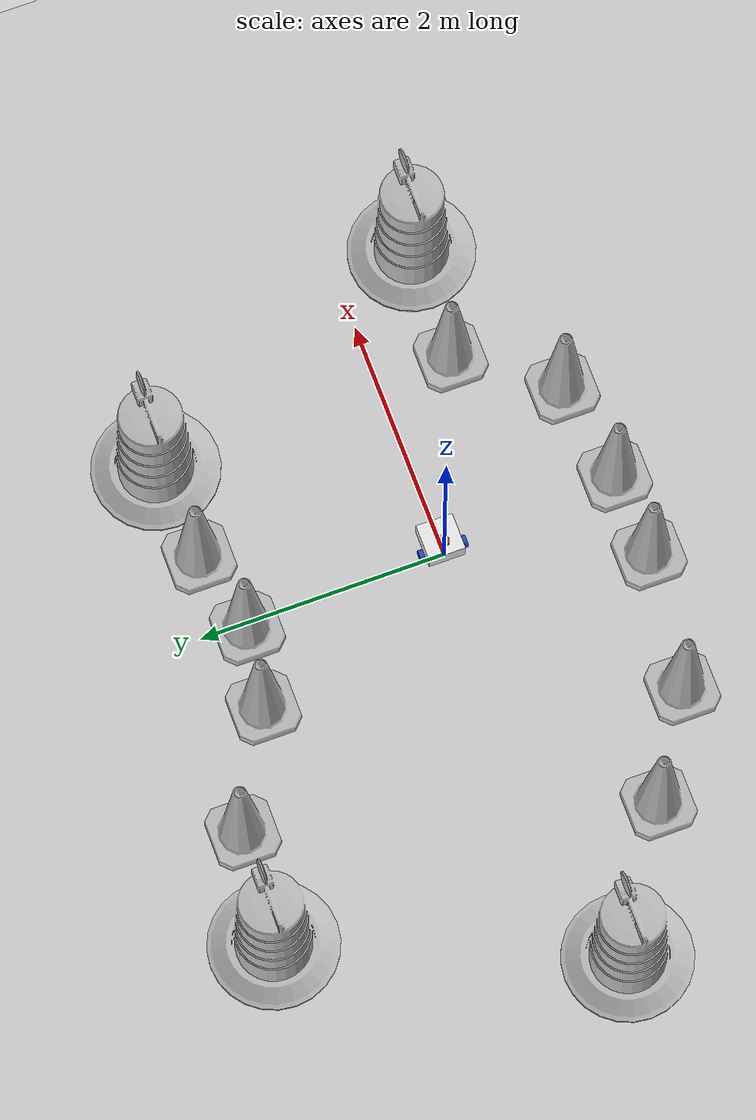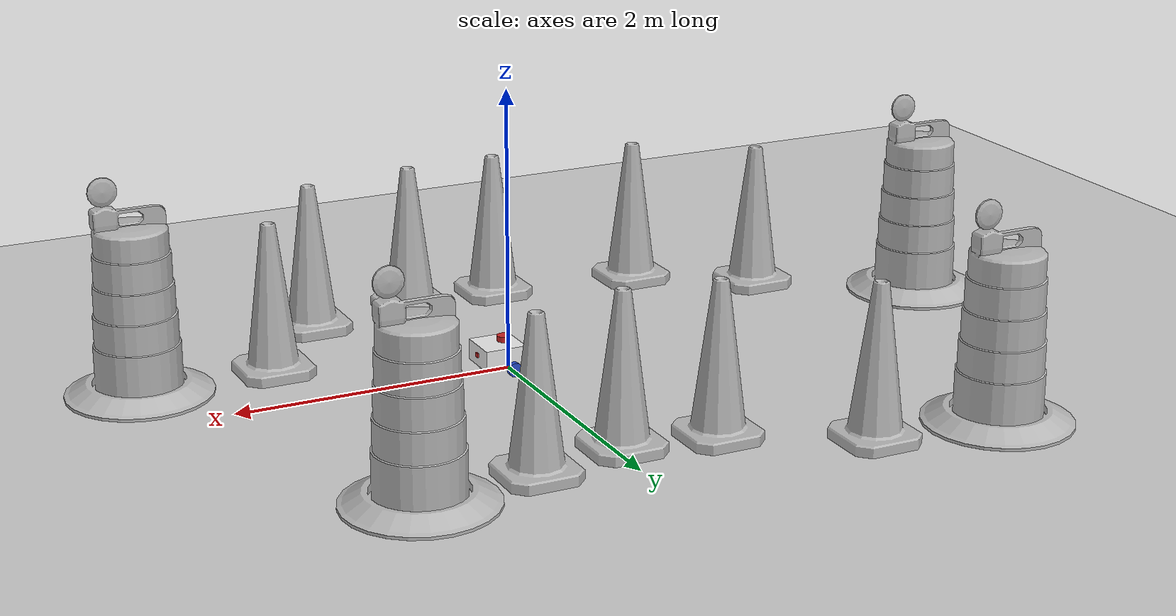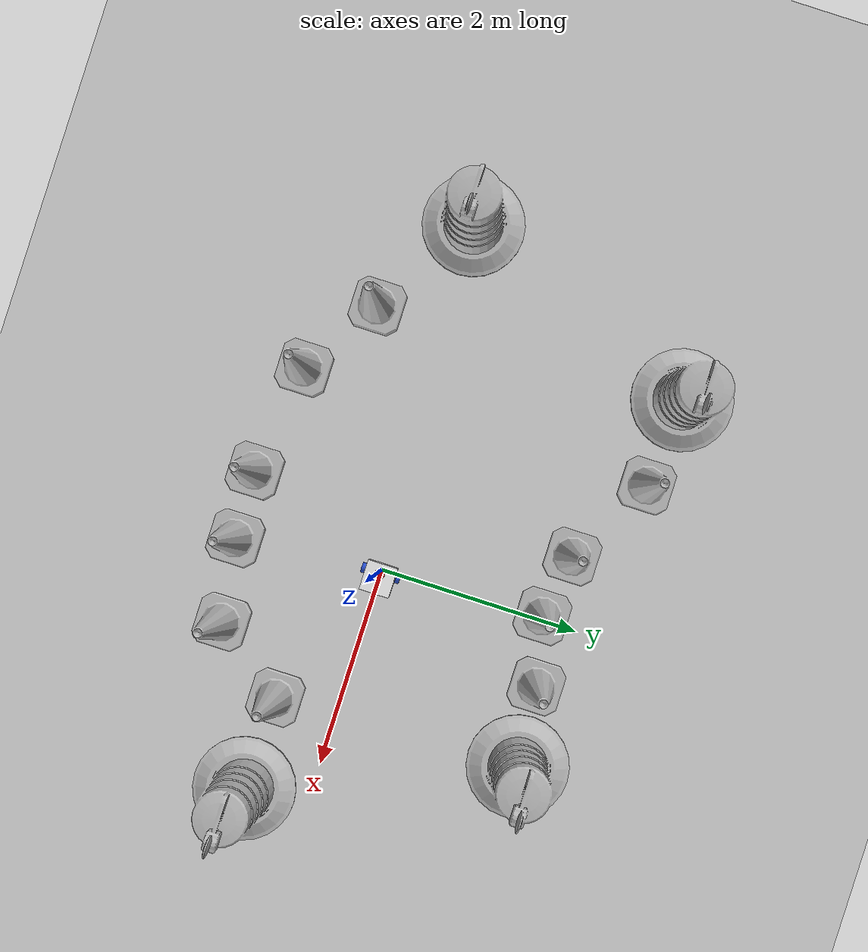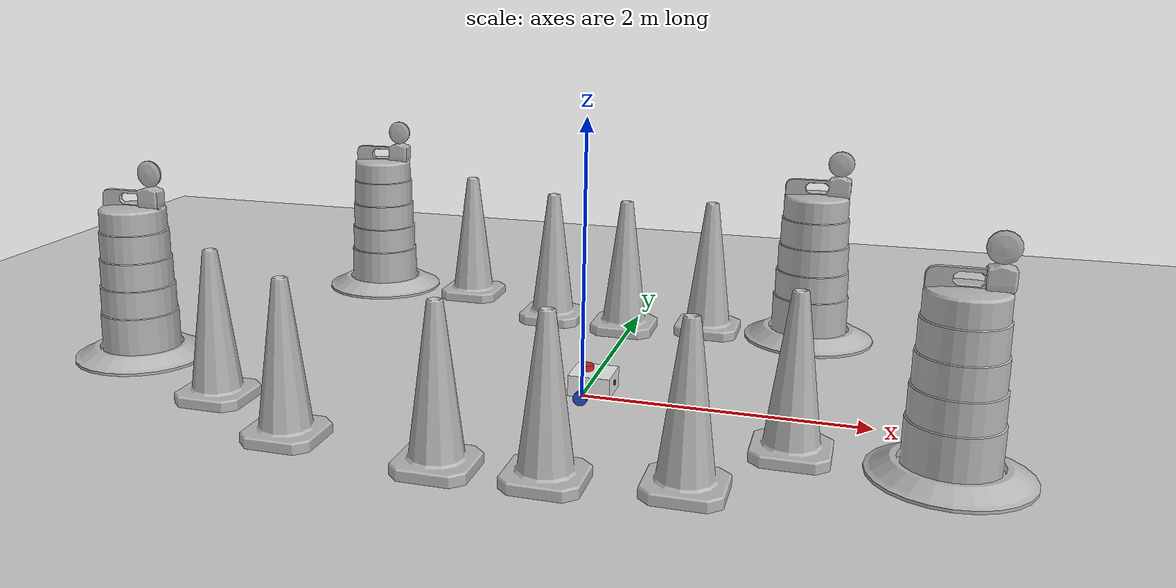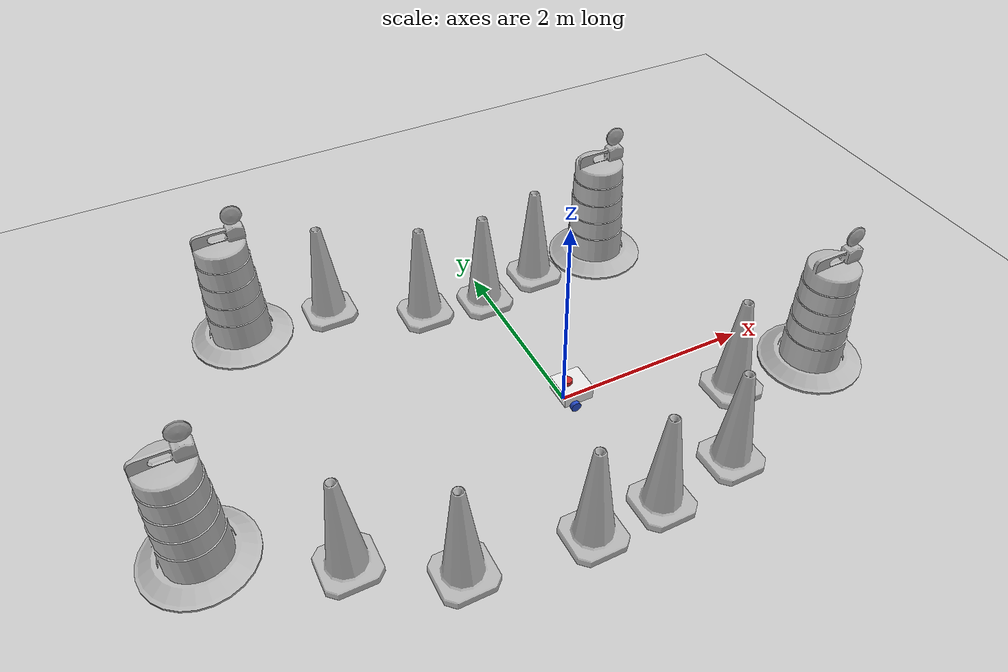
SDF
<sdf version="1.7">
 <world name="default">
  <light name="sun" type="directional">
   <pose>0 0 10 0 -0 0</pose>
   <diffuse>0.8 0.8 0.8 1</diffuse>
   <specular>0.2 0.2 0.2 1</specular>
   <attenuation>
    <range>1000</range>
    <constant>0.9</constant>
    <linear>0.01</linear>
    <quadratic>0.001</quadratic>
   </attenuation>
   <direction>-0.5 0.1 -0.9</direction>
   <spot><inner_angle>0</inner_angle><outer_angle>0</outer_angle><falloff>0</falloff></spot>
  </light>
  <model name="ground_plane">
   <static>1</static>
   <link name="link">
    <collision name="collision">
     <geometry><plane><normal>0 0 1</normal><size>100 100</size></plane></geometry>
     <surface><friction><ode><mu>100</mu><mu2>50</mu2></ode></friction></surface>
    </collision>
    <visual name="visual">
     <cast_shadows>0</cast_shadows>
     <geometry><plane><normal>0 0 1</normal><size>100 100</size></plane></geometry>
     <material>
      <script><uri>file://media/materials/scripts/gazebo.material</uri><name>Gazebo/Grey</name></script>
     </material>
    </visual>
   </link>
  </model>
  <gravity>0 0 -9.8</gravity>
  <magnetic_field>6e-06 2.3e-05 -4.2e-05</magnetic_field>
  <atmosphere type="adiabatic"/>
  <physics type="ode">
   <max_step_size>0.001</max_step_size>
   <real_time_factor>1</real_time_factor>
   <real_time_update_rate>1000</real_time_update_rate>
  </physics>
  <scene><ambient>0.4 0.4 0.4 1</ambient><background>0.7 0.7 0.7 1</background><shadows>1</shadows></scene>
  <audio><device>default</device></audio>
  <spherical_coordinates>
   <surface_model>EARTH_WGS84</surface_model>
   <latitude_deg>0</latitude_deg>
   <longitude_deg>0</longitude_deg>
   <elevation>0</elevation>
   <heading_deg>0</heading_deg>
  </spherical_coordinates>
  <model name="my_bot">
   <link name="base_link">
    <inertial>
     <pose>0.055714 0 0.078571 0 -0 0</pose>
     <mass>0.7</mass>
     <inertia>
      <ixx>0.0064244</ixx>
      <ixy>0</ixy>
      <ixz>0.00118929</ixz>
      <iyy>0.00746155</iyy>
      <iyz>0</iyz>
      <izz>0.00876214</izz>
     </inertia>
    </inertial>
    <collision name="base_link_fixed_joint_lump__chassis_collision">
     <pose>0.05 0 0.075 0 -0 0</pose>
     <geometry><box><size>0.3 0.3 0.15</size></box></geometry>
    </collision>
    <collision name="base_link_fixed_joint_lump__caster_wheel_collision_1">
     <pose>0.14 0 0 0 -0 0</pose>
     <geometry><sphere><radius>0.05</radius></sphere></geometry>
     <surface><friction><ode><mu>0.001</mu><mu2>0.001</mu2></ode></friction></surface>
    </collision>
    <collision name="base_link_fixed_joint_lump__laser_frame_collision_2">
     <pose>0 0 0.175 0 -0 0</pose>
     <geometry><cylinder><length>0.04</length><radius>0.05</radius></cylinder></geometry>
    </collision>
    <visual name="base_link_fixed_joint_lump__chassis_visual">
     <pose>0.05 0 0.075 0 -0 0</pose>
     <geometry><box><size>0.3 0.3 0.15</size></box></geometry>
     <material>
      <script><name>Gazebo/White</name><uri>file://media/materials/scripts/gazebo.material</uri></script>
     </material>
    </visual>
    <visual name="base_link_fixed_joint_lump__camera_link_visual_1">
     <pose>0.205 0 0.08 0 -0 0</pose>
     <geometry><box><size>0.01 0.03 0.03</size></box></geometry>
     <material>
      <script><name>Gazebo/Red</name><uri>file://media/materials/scripts/gazebo.material</uri></script>
     </material>
    </visual>
    <visual name="base_link_fixed_joint_lump__caster_wheel_visual_2">
     <pose>0.14 0 0 0 -0 0</pose>
     <geometry><sphere><radius>0.05</radius></sphere></geometry>
     <material>
      <script><name>Gazebo/Black</name><uri>file://media/materials/scripts/gazebo.material</uri></script>
     </material>
    </visual>
    <visual name="base_link_fixed_joint_lump__laser_frame_visual_3">
     <pose>0 0 0.175 0 -0 0</pose>
     <geometry><cylinder><length>0.04</length><radius>0.05</radius></cylinder></geometry>
     <material>
      <script><name>Gazebo/Red</name><uri>file://media/materials/scripts/gazebo.material</uri></script>
     </material>
    </visual>
    <sensor name="camera" type="camera">
     <visualize>1</visualize>
     <update_rate>10</update_rate>
     <camera>
      <horizontal_fov>1.089</horizontal_fov>
      <image><format>R8G8B8</format><width>640</width><height>480</height></image>
      <clip><near>0.05</near><far>8</far></clip>
     </camera>
     <plugin name="camera_controller" filename="libgazebo_ros_camera.so">
      <frame_name>camera_link_optical</frame_name>
     </plugin>
     <pose>0.205 0 0.08 0 -0 0</pose>
    </sensor>
    <sensor name="laser" type="ray">
     <visualize>1</visualize>
     <update_rate>10</update_rate>
     <ray>
      <scan>
       <horizontal>
        <samples>360</samples>
        <min_angle>-3.14</min_angle>
        <max_angle>3.14</max_angle>
        <resolution>1</resolution>
       </horizontal>
       <vertical><samples>1</samples><min_angle>0</min_angle><max_angle>0</max_angle></vertical>
      </scan>
      <range><min>0.3</min><max>12</max></range>
     </ray>
     <plugin name="laser_controller" filename="libgazebo_ros_ray_sensor.so">
      <ros><argument>~/out:=scan</argument></ros>
      <output_type>sensor_msgs/LaserScan</output_type>
      <frame_name>laser_frame</frame_name>
     </plugin>
     <pose>0 0 0.175 0 -0 0</pose>
    </sensor>
   </link>
   <joint name="left_wheel_joint" type="revolute">
    <pose relative_to="base_link">0 0.175 0 -1.5708 0 0</pose>
    <parent>base_link</parent>
    <child>left_wheel</child>
    <axis>
     <xyz>0 0 1</xyz>
     <limit><lower>-1e+16</lower><upper>1e+16</upper></limit>
     <dynamics><spring_reference>0</spring_reference><spring_stiffness>0</spring_stiffness></dynamics>
    </axis>
   </joint>
   <link name="left_wheel">
    <pose relative_to="left_wheel_joint">0 0 0 0 -0 0</pose>
    <inertial>
     <mass>0.1</mass>
     <inertia>
      <ixx>8.33333e-05</ixx>
      <ixy>0</ixy>
      <ixz>0</ixz>
      <iyy>8.33333e-05</iyy>
      <iyz>0</iyz>
      <izz>0.000125</izz>
     </inertia>
    </inertial>
    <collision name="left_wheel_collision"><geometry><sphere><radius>0.05</radius></sphere></geometry></collision>
    <visual name="left_wheel_visual">
     <geometry><cylinder><length>0.04</length><radius>0.05</radius></cylinder></geometry>
     <material>
      <script><name>Gazebo/Blue</name><uri>file://media/materials/scripts/gazebo.material</uri></script>
     </material>
    </visual>
   </link>
   <joint name="right_wheel_joint" type="revolute">
    <pose relative_to="base_link">0 -0.175 0 1.5708 -0 0</pose>
    <parent>base_link</parent>
    <child>right_wheel</child>
    <axis>
     <xyz>0 0 -1</xyz>
     <limit><lower>-1e+16</lower><upper>1e+16</upper></limit>
     <dynamics><spring_reference>0</spring_reference><spring_stiffness>0</spring_stiffness></dynamics>
    </axis>
   </joint>
   <link name="right_wheel">
    <pose relative_to="right_wheel_joint">0 0 0 0 -0 0</pose>
    <inertial>
     <mass>0.1</mass>
     <inertia>
      <ixx>8.33333e-05</ixx>
      <ixy>0</ixy>
      <ixz>0</ixz>
      <iyy>8.33333e-05</iyy>
      <iyz>0</iyz>
      <izz>0.000125</izz>
     </inertia>
    </inertial>
    <collision name="right_wheel_collision">
     <geometry><sphere><radius>0.05</radius></sphere></geometry>
    </collision>
    <visual name="right_wheel_visual">
     <geometry><cylinder><length>0.04</length><radius>0.05</radius></cylinder></geometry>
     <material>
      <script><name>Gazebo/Blue</name><uri>file://media/materials/scripts/gazebo.material</uri></script>
     </material>
    </visual>
   </link>
   <static>0</static>
   <plugin name="gazebo_ros2_control" filename="libgazebo_ros2_control.so">
    <parameters>/home/zacharyrw/dev_ws/install/my_bot/share/my_bot/config/my_controllers.yaml</parameters>
   </plugin>
   <pose>0.031025 0.000856 0.049997 -1.6e-05 -2.1e-05 -0.00245</pose>
  </model>
  <model name="Construction Barrel">
   <link name="link">
    <inertial>
     <pose>0 0 0.4 0 -0 0</pose>
     <mass>500</mass>
     <inertia><ixx>51.2096</ixx><iyy>51.2096</iyy><izz>25</izz><ixy>0</ixy><ixz>0</ixz><iyz>0</iyz></inertia>
    </inertial>
    <collision name="collision">
     <geometry><mesh><uri>model://construction_barrel/meshes/construction_barrel.dae</uri></mesh></geometry>
    </collision>
    <visual name="visual">
     <geometry><mesh><uri>model://construction_barrel/meshes/construction_barrel.dae</uri></mesh></geometry>
    </visual>
   </link>
   <pose>-3.50526 -0.177699 1e-06 3e-06 2e-06 -2.2e-05</pose>
  </model>
  <model name="Construction Barrel_0">
   <link name="link">
    <inertial>
     <pose>0 0 0.4 0 -0 0</pose>
     <mass>500</mass>
     <inertia><ixx>51.2096</ixx><iyy>51.2096</iyy><izz>25</izz><ixy>0</ixy><ixz>0</ixz><iyz>0</iyz></inertia>
    </inertial>
    <collision name="collision">
     <geometry><mesh><uri>model://construction_barrel/meshes/construction_barrel.dae</uri></mesh></geometry>
    </collision>
    <visual name="visual">
     <geometry><mesh><uri>model://construction_barrel/meshes/construction_barrel.dae</uri></mesh></geometry>
    </visual>
   </link>
   <pose>-2.49056 2.30127 1e-06 3e-06 2e-06 -2.1e-05</pose>
  </model>
  <model name="Construction Cone">
   <link name="link">
    <collision name="collision">
     <geometry>
      <mesh><scale>10 10 10</scale><uri>model://construction_cone/meshes/construction_cone.dae</uri></mesh>
     </geometry>
    </collision>
    <visual name="visual">
     <geometry>
      <mesh><scale>10 10 10</scale><uri>model://construction_cone/meshes/construction_cone.dae</uri></mesh>
     </geometry>
    </visual>
    <inertial>
     <inertia><ixx>1</ixx><ixy>0</ixy><ixz>0</ixz><iyy>1</iyy><iyz>0</iyz><izz>1</izz></inertia>
     <mass>1</mass>
    </inertial>
   </link>
   <pose>-2.45479 -0.831408 -0 0 -0 0</pose>
  </model>
  <model name="Construction Cone_clone">
   <link name="link">
    <collision name="collision">
     <geometry>
      <mesh><scale>10 10 10</scale><uri>model://construction_cone/meshes/construction_cone.dae</uri></mesh>
     </geometry>
    </collision>
    <visual name="visual">
     <geometry>
      <mesh><scale>10 10 10</scale><uri>model://construction_cone/meshes/construction_cone.dae</uri></mesh>
     </geometry>
    </visual>
    <inertial>
     <inertia><ixx>1</ixx><ixy>0</ixy><ixz>0</ixz><iyy>1</iyy><iyz>0</iyz><izz>1</izz></inertia>
     <mass>1</mass>
    </inertial>
   </link>
   <pose>-1.6574 -1.33154 0 -0 -0 -0</pose>
  </model>
  <model name="Construction Cone_clone_0">
   <link name="link">
    <collision name="collision">
     <geometry>
      <mesh><scale>10 10 10</scale><uri>model://construction_cone/meshes/construction_cone.dae</uri></mesh>
     </geometry>
    </collision>
    <visual name="visual">
     <geometry>
      <mesh><scale>10 10 10</scale><uri>model://construction_cone/meshes/construction_cone.dae</uri></mesh>
     </geometry>
    </visual>
    <inertial>
     <inertia><ixx>1</ixx><ixy>0</ixy><ixz>0</ixz><iyy>1</iyy><iyz>0</iyz><izz>1</izz></inertia>
     <mass>1</mass>
    </inertial>
   </link>
   <pose>-0.549602 -1.48437 -8e-06 1e-06 -0 0</pose>
  </model>
  <model name="Construction Cone_clone_1">
   <link name="link">
    <collision name="collision">
     <geometry>
      <mesh><scale>10 10 10</scale><uri>model://construction_cone/meshes/construction_cone.dae</uri></mesh>
     </geometry>
    </collision>
    <visual name="visual">
     <geometry>
      <mesh><scale>10 10 10</scale><uri>model://construction_cone/meshes/construction_cone.dae</uri></mesh>
     </geometry>
    </visual>
    <inertial>
     <inertia><ixx>1</ixx><ixy>0</ixy><ixz>0</ixz><iyy>1</iyy><iyz>0</iyz><izz>1</izz></inertia>
     <mass>1</mass>
    </inertial>
   </link>
   <pose>0.1407 -1.46395 -9e-06 1e-06 -1e-06 0</pose>
  </model>
  <model name="Construction Cone_clone_2">
   <link name="link">
    <collision name="collision">
     <geometry>
      <mesh><scale>10 10 10</scale><uri>model://construction_cone/meshes/construction_cone.dae</uri></mesh>
     </geometry>
    </collision>
    <visual name="visual">
     <geometry>
      <mesh><scale>10 10 10</scale><uri>model://construction_cone/meshes/construction_cone.dae</uri></mesh>
     </geometry>
    </visual>
    <inertial>
     <inertia><ixx>1</ixx><ixy>0</ixy><ixz>0</ixz><iyy>1</iyy><iyz>0</iyz><izz>1</izz></inertia>
     <mass>1</mass>
    </inertial>
   </link>
   <pose>0.962736 -1.34079 -0 0 -0 0</pose>
  </model>
  <model name="Construction Cone_clone_3">
   <link name="link">
    <collision name="collision">
     <geometry>
      <mesh><scale>10 10 10</scale><uri>model://construction_cone/meshes/construction_cone.dae</uri></mesh>
     </geometry>
    </collision>
    <visual name="visual">
     <geometry>
      <mesh><scale>10 10 10</scale><uri>model://construction_cone/meshes/construction_cone.dae</uri></mesh>
     </geometry>
    </visual>
    <inertial>
     <inertia><ixx>1</ixx><ixy>0</ixy><ixz>0</ixz><iyy>1</iyy><iyz>0</iyz><izz>1</izz></inertia>
     <mass>1</mass>
    </inertial>
   </link>
   <pose>1.51082 -0.613473 0 -0 -0 -0</pose>
  </model>
  <model name="Construction Cone_clone_4">
   <link name="link">
    <collision name="collision">
     <geometry>
      <mesh><scale>10 10 10</scale><uri>model://construction_cone/meshes/construction_cone.dae</uri></mesh>
     </geometry>
    </collision>
    <visual name="visual">
     <geometry>
      <mesh><scale>10 10 10</scale><uri>model://construction_cone/meshes/construction_cone.dae</uri></mesh>
     </geometry>
    </visual>
    <inertial>
     <inertia><ixx>1</ixx><ixy>0</ixy><ixz>0</ixz><iyy>1</iyy><iyz>0</iyz><izz>1</izz></inertia>
     <mass>1</mass>
    </inertial>
   </link>
   <pose>-1.58271 2.22237 -0 -0 -0 -0</pose>
  </model>
  <model name="Construction Cone_clone_5">
   <link name="link">
    <collision name="collision">
     <geometry>
      <mesh><scale>10 10 10</scale><uri>model://construction_cone/meshes/construction_cone.dae</uri></mesh>
     </geometry>
    </collision>
    <visual name="visual">
     <geometry>
      <mesh><scale>10 10 10</scale><uri>model://construction_cone/meshes/construction_cone.dae</uri></mesh>
     </geometry>
    </visual>
    <inertial>
     <inertia><ixx>1</ixx><ixy>0</ixy><ixz>0</ixz><iyy>1</iyy><iyz>0</iyz><izz>1</izz></inertia>
     <mass>1</mass>
    </inertial>
   </link>
   <pose>-0.696063 1.73834 -1e-05 -1e-06 0 0</pose>
  </model>
  <model name="Construction Cone_clone_6">
   <link name="link">
    <collision name="collision">
     <geometry>
      <mesh><scale>10 10 10</scale><uri>model://construction_cone/meshes/construction_cone.dae</uri></mesh>
     </geometry>
    </collision>
    <visual name="visual">
     <geometry>
      <mesh><scale>10 10 10</scale><uri>model://construction_cone/meshes/construction_cone.dae</uri></mesh>
     </geometry>
    </visual>
    <inertial>
     <inertia><ixx>1</ixx><ixy>0</ixy><ixz>0</ixz><iyy>1</iyy><iyz>0</iyz><izz>1</izz></inertia>
     <mass>1</mass>
    </inertial>
   </link>
   <pose>-0.050187 1.63637 -1e-05 -1e-06 0 0</pose>
  </model>
  <model name="Construction Cone_clone_7">
   <link name="link">
    <collision name="collision">
     <geometry>
      <mesh><scale>10 10 10</scale><uri>model://construction_cone/meshes/construction_cone.dae</uri></mesh>
     </geometry>
    </collision>
    <visual name="visual">
     <geometry>
      <mesh><scale>10 10 10</scale><uri>model://construction_cone/meshes/construction_cone.dae</uri></mesh>
     </geometry>
    </visual>
    <inertial>
     <inertia><ixx>1</ixx><ixy>0</ixy><ixz>0</ixz><iyy>1</iyy><iyz>0</iyz><izz>1</izz></inertia>
     <mass>1</mass>
    </inertial>
   </link>
   <pose>0.62417 1.79074 -8e-06 1e-06 -0 0</pose>
  </model>
  <model name="Construction Barrel_1">
   <link name="link">
    <inertial>
     <pose>0 0 0.4 0 -0 0</pose>
     <mass>500</mass>
     <inertia><ixx>51.2096</ixx><iyy>51.2096</iyy><izz>25</izz><ixy>0</ixy><ixz>0</ixz><iyz>0</iyz></inertia>
    </inertial>
    <collision name="collision">
     <geometry><mesh><uri>model://construction_barrel/meshes/construction_barrel.dae</uri></mesh></geometry>
    </collision>
    <visual name="visual">
     <geometry><mesh><uri>model://construction_barrel/meshes/construction_barrel.dae</uri></mesh></geometry>
    </visual>
   </link>
   <pose>1.4348 1.85933 0 0 0 -3e-06</pose>
  </model>
  <model name="Construction Barrel_1_clone">
   <link name="link">
    <inertial>
     <pose>0 0 0.4 0 -0 0</pose>
     <mass>500</mass>
     <inertia><ixx>51.2096</ixx><iyy>51.2096</iyy><izz>25</izz><ixy>0</ixy><ixz>0</ixz><iyz>0</iyz></inertia>
    </inertial>
    <collision name="collision">
     <geometry><mesh><uri>model://construction_barrel/meshes/construction_barrel.dae</uri></mesh></geometry>
    </collision>
    <visual name="visual">
     <geometry><mesh><uri>model://construction_barrel/meshes/construction_barrel.dae</uri></mesh></geometry>
    </visual>
   </link>
   <pose>2.45805 -0.636595 -3e-06 -6e-06 -5e-06 -3e-06</pose>
  </model>
 </world>
</sdf>
